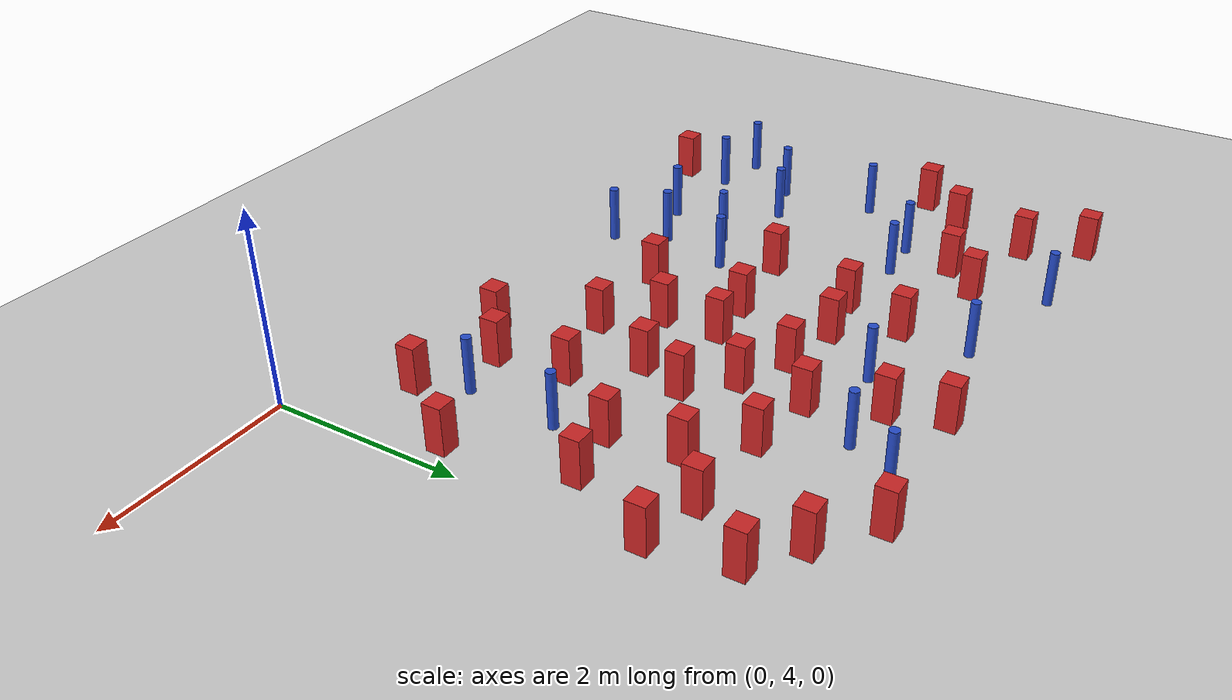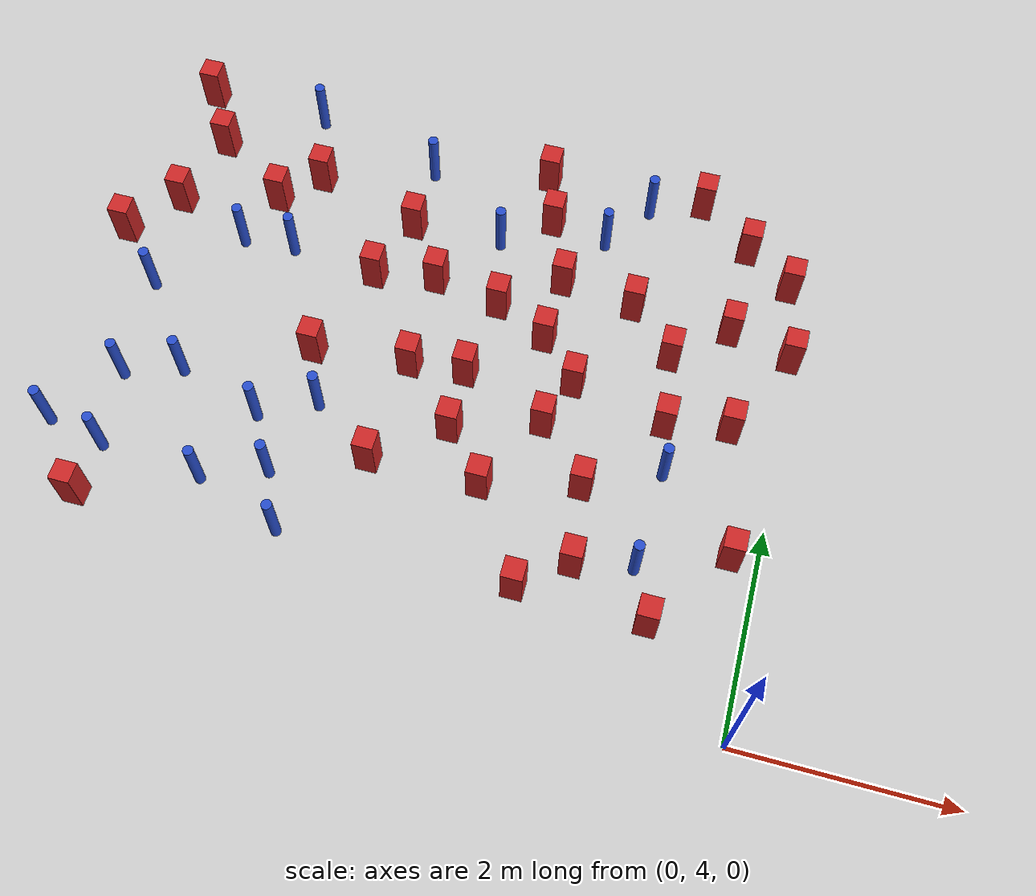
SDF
<sdf version="1.6">
 <world name="default">
  <model name="ground_plane">
   <static>1</static>
   <link name="link">
    <collision name="collision">
     <geometry><plane><normal>0 0 1</normal><size>100 100</size></plane></geometry>
     <surface><friction><ode><mu>100</mu><mu2>50</mu2></ode></friction></surface>
    </collision>
    <visual name="visual">
     <cast_shadows>0</cast_shadows>
     <geometry><plane><normal>0 0 1</normal><size>100 100</size></plane></geometry>
     <material>
      <ambient>1.0 1.0 1.0 1.0</ambient>
      <diffuse>0.8 0.8 0.8 1.0</diffuse>
      <specular>0.01 0.01 0.01 1.000000</specular>
     </material>
    </visual>
   </link>
  </model>
  <model name="square_post_obstacle0">
   <static>true</static>
   <pose>-6.55129325416 9.47398239666 -6.11067671241e-07 -5.50515727128e-06 -8.79689657224e-07 2.37013304536e-05</pose>
   <link name="link">
    <pose>0 0 0.25 0 -0 0</pose>
    <inertial>
     <mass>100</mass>
     <inertia>
      <ixx>0.166667</ixx>
      <ixy>0</ixy>
      <ixz>0</ixz>
      <iyy>0.166667</iyy>
      <iyz>0</iyz>
      <izz>0.166667</izz>
     </inertia>
    </inertial>
    <collision name="collision"><geometry><box><size>.2 .2 .5</size></box></geometry></collision>
    <visual name="visual">
     <geometry><box><size>.2 .2 .5</size></box></geometry>
     <material>
      <script><name>Gazebo/Red</name><uri>file://media/materials/scripts/gazebo.material</uri></script>
     </material>
    </visual>
   </link>
  </model>
  <model name="pole_obstacle3">
   <static>true</static>
   <pose>-2.09019270715 8.67762348994 -9.4761961606e-06 5.49618799729e-07 2.36310414e-07 -1.55090534824e-07</pose>
   <link name="link">
    <pose>0 0 0.3 0 -0 0</pose>
    <inertial>
     <mass>1</mass>
     <inertia><ixx>0.145833</ixx><ixy>0</ixy><ixz>0</ixz><iyy>0.145833</iyy><iyz>0</iyz><izz>0.125</izz></inertia>
    </inertial>
    <collision name="collision">
     <geometry><cylinder><radius>0.05</radius><length>.6</length></cylinder></geometry>
    </collision>
    <visual name="visual">
     <geometry><cylinder><radius>0.05</radius><length>.6</length></cylinder></geometry>
     <material>
      <script><name>Gazebo/Blue</name><uri>file://media/materials/scripts/gazebo.material</uri></script>
     </material>
    </visual>
   </link>
  </model>
  <model name="square_post_obstacle6">
   <static>true</static>
   <pose>-6.38697773006 8.07653702555 -6.11067671241e-07 -5.50515727128e-06 -8.79689657224e-07 2.37013304536e-05</pose>
   <link name="link">
    <pose>0 0 0.25 0 -0 0</pose>
    <inertial>
     <mass>100</mass>
     <inertia>
      <ixx>0.166667</ixx>
      <ixy>0</ixy>
      <ixz>0</ixz>
      <iyy>0.166667</iyy>
      <iyz>0</iyz>
      <izz>0.166667</izz>
     </inertia>
    </inertial>
    <collision name="collision"><geometry><box><size>.2 .2 .5</size></box></geometry></collision>
    <visual name="visual">
     <geometry><box><size>.2 .2 .5</size></box></geometry>
     <material>
      <script><name>Gazebo/Red</name><uri>file://media/materials/scripts/gazebo.material</uri></script>
     </material>
    </visual>
   </link>
  </model>
  <model name="pole_obstacle4">
   <static>true</static>
   <pose>-1.06302491297 5.34108228484 -9.47619616065e-06 5.49618799737e-07 2.36310414061e-07 -1.550905348e-07</pose>
   <link name="link">
    <pose>0 0 0.3 0 -0 0</pose>
    <inertial>
     <mass>1</mass>
     <inertia><ixx>0.145833</ixx><ixy>0</ixy><ixz>0</ixz><iyy>0.145833</iyy><iyz>0</iyz><izz>0.125</izz></inertia>
    </inertial>
    <collision name="collision">
     <geometry><cylinder><radius>0.05</radius><length>.6</length></cylinder></geometry>
    </collision>
    <visual name="visual">
     <geometry><cylinder><radius>0.05</radius><length>.6</length></cylinder></geometry>
     <material>
      <script><name>Gazebo/Blue</name><uri>file://media/materials/scripts/gazebo.material</uri></script>
     </material>
    </visual>
   </link>
  </model>
  <model name="pole_obstacle5">
   <static>true</static>
   <pose>-4.29775557987 6.17929323711 -9.47619616065e-06 5.49618799737e-07 2.36310414037e-07 -1.55090534814e-07</pose>
   <link name="link">
    <pose>0 0 0.3 0 -0 0</pose>
    <inertial>
     <mass>1</mass>
     <inertia><ixx>0.145833</ixx><ixy>0</ixy><ixz>0</ixz><iyy>0.145833</iyy><iyz>0</iyz><izz>0.125</izz></inertia>
    </inertial>
    <collision name="collision">
     <geometry><cylinder><radius>0.05</radius><length>.6</length></cylinder></geometry>
    </collision>
    <visual name="visual">
     <geometry><cylinder><radius>0.05</radius><length>.6</length></cylinder></geometry>
     <material>
      <script><name>Gazebo/Blue</name><uri>file://media/materials/scripts/gazebo.material</uri></script>
     </material>
    </visual>
   </link>
  </model>
  <model name="pole_obstacle7">
   <static>true</static>
   <pose>-5.32592031374 9.43319884852 -9.47619616065e-06 5.49618799737e-07 2.36310414065e-07 -1.55090534796e-07</pose>
   <link name="link">
    <pose>0 0 0.3 0 -0 0</pose>
    <inertial>
     <mass>1</mass>
     <inertia><ixx>0.145833</ixx><ixy>0</ixy><ixz>0</ixz><iyy>0.145833</iyy><iyz>0</iyz><izz>0.125</izz></inertia>
    </inertial>
    <collision name="collision">
     <geometry><cylinder><radius>0.05</radius><length>.6</length></cylinder></geometry>
    </collision>
    <visual name="visual">
     <geometry><cylinder><radius>0.05</radius><length>.6</length></cylinder></geometry>
     <material>
      <script><name>Gazebo/Blue</name><uri>file://media/materials/scripts/gazebo.material</uri></script>
     </material>
    </visual>
   </link>
  </model>
  <model name="square_post_obstacle17">
   <static>true</static>
   <pose>-6.20452500307 8.8755536267 -6.11067671241e-07 -5.50515727128e-06 -8.79689657224e-07 2.37013304536e-05</pose>
   <link name="link">
    <pose>0 0 0.25 0 -0 0</pose>
    <inertial>
     <mass>100</mass>
     <inertia>
      <ixx>0.166667</ixx>
      <ixy>0</ixy>
      <ixz>0</ixz>
      <iyy>0.166667</iyy>
      <iyz>0</iyz>
      <izz>0.166667</izz>
     </inertia>
    </inertial>
    <collision name="collision"><geometry><box><size>.2 .2 .5</size></box></geometry></collision>
    <visual name="visual">
     <geometry><box><size>.2 .2 .5</size></box></geometry>
     <material>
      <script><name>Gazebo/Red</name><uri>file://media/materials/scripts/gazebo.material</uri></script>
     </material>
    </visual>
   </link>
  </model>
  <model name="square_post_obstacle26">
   <static>true</static>
   <pose>-0.496489463464 6.91339312753 -6.11067671241e-07 -5.50515727128e-06 -8.79689657224e-07 2.37013304536e-05</pose>
   <link name="link">
    <pose>0 0 0.25 0 -0 0</pose>
    <inertial>
     <mass>100</mass>
     <inertia>
      <ixx>0.166667</ixx>
      <ixy>0</ixy>
      <ixz>0</ixz>
      <iyy>0.166667</iyy>
      <iyz>0</iyz>
      <izz>0.166667</izz>
     </inertia>
    </inertial>
    <collision name="collision"><geometry><box><size>.2 .2 .5</size></box></geometry></collision>
    <visual name="visual">
     <geometry><box><size>.2 .2 .5</size></box></geometry>
     <material>
      <script><name>Gazebo/Red</name><uri>file://media/materials/scripts/gazebo.material</uri></script>
     </material>
    </visual>
   </link>
  </model>
  <model name="square_post_obstacle27">
   <static>true</static>
   <pose>-3.66582739806 5.74987158202 -6.11067671241e-07 -5.50515727128e-06 -8.79689657224e-07 2.37013304536e-05</pose>
   <link name="link">
    <pose>0 0 0.25 0 -0 0</pose>
    <inertial>
     <mass>100</mass>
     <inertia>
      <ixx>0.166667</ixx>
      <ixy>0</ixy>
      <ixz>0</ixz>
      <iyy>0.166667</iyy>
      <iyz>0</iyz>
      <izz>0.166667</izz>
     </inertia>
    </inertial>
    <collision name="collision"><geometry><box><size>.2 .2 .5</size></box></geometry></collision>
    <visual name="visual">
     <geometry><box><size>.2 .2 .5</size></box></geometry>
     <material>
      <script><name>Gazebo/Red</name><uri>file://media/materials/scripts/gazebo.material</uri></script>
     </material>
    </visual>
   </link>
  </model>
  <model name="square_post_obstacle35">
   <static>true</static>
   <pose>-0.684515912544 8.93944924878 -6.11067671241e-07 -5.50515727128e-06 -8.79689657224e-07 2.37013304536e-05</pose>
   <link name="link">
    <pose>0 0 0.25 0 -0 0</pose>
    <inertial>
     <mass>100</mass>
     <inertia>
      <ixx>0.166667</ixx>
      <ixy>0</ixy>
      <ixz>0</ixz>
      <iyy>0.166667</iyy>
      <iyz>0</iyz>
      <izz>0.166667</izz>
     </inertia>
    </inertial>
    <collision name="collision"><geometry><box><size>.2 .2 .5</size></box></geometry></collision>
    <visual name="visual">
     <geometry><box><size>.2 .2 .5</size></box></geometry>
     <material>
      <script><name>Gazebo/Red</name><uri>file://media/materials/scripts/gazebo.material</uri></script>
     </material>
    </visual>
   </link>
  </model>
  <model name="square_post_obstacle43">
   <static>true</static>
   <pose>-2.02467837863 7.00538121798 -6.11067671241e-07 -5.50515727128e-06 -8.79689657224e-07 2.37013304536e-05</pose>
   <link name="link">
    <pose>0 0 0.25 0 -0 0</pose>
    <inertial>
     <mass>100</mass>
     <inertia>
      <ixx>0.166667</ixx>
      <ixy>0</ixy>
      <ixz>0</ixz>
      <iyy>0.166667</iyy>
      <iyz>0</iyz>
      <izz>0.166667</izz>
     </inertia>
    </inertial>
    <collision name="collision"><geometry><box><size>.2 .2 .5</size></box></geometry></collision>
    <visual name="visual">
     <geometry><box><size>.2 .2 .5</size></box></geometry>
     <material>
      <script><name>Gazebo/Red</name><uri>file://media/materials/scripts/gazebo.material</uri></script>
     </material>
    </visual>
   </link>
  </model>
  <model name="square_post_obstacle47">
   <static>true</static>
   <pose>-0.263417407403 5.66119914676 -6.11067671241e-07 -5.50515727128e-06 -8.79689657224e-07 2.37013304536e-05</pose>
   <link name="link">
    <pose>0 0 0.25 0 -0 0</pose>
    <inertial>
     <mass>100</mass>
     <inertia>
      <ixx>0.166667</ixx>
      <ixy>0</ixy>
      <ixz>0</ixz>
      <iyy>0.166667</iyy>
      <iyz>0</iyz>
      <izz>0.166667</izz>
     </inertia>
    </inertial>
    <collision name="collision"><geometry><box><size>.2 .2 .5</size></box></geometry></collision>
    <visual name="visual">
     <geometry><box><size>.2 .2 .5</size></box></geometry>
     <material>
      <script><name>Gazebo/Red</name><uri>file://media/materials/scripts/gazebo.material</uri></script>
     </material>
    </visual>
   </link>
  </model>
  <model name="square_post_obstacle51">
   <static>true</static>
   <pose>-4.00159535181 8.37356008593 -6.11067671241e-07 -5.50515727128e-06 -8.79689657224e-07 2.37013304536e-05</pose>
   <link name="link">
    <pose>0 0 0.25 0 -0 0</pose>
    <inertial>
     <mass>100</mass>
     <inertia>
      <ixx>0.166667</ixx>
      <ixy>0</ixy>
      <ixz>0</ixz>
      <iyy>0.166667</iyy>
      <iyz>0</iyz>
      <izz>0.166667</izz>
     </inertia>
    </inertial>
    <collision name="collision"><geometry><box><size>.2 .2 .5</size></box></geometry></collision>
    <visual name="visual">
     <geometry><box><size>.2 .2 .5</size></box></geometry>
     <material>
      <script><name>Gazebo/Red</name><uri>file://media/materials/scripts/gazebo.material</uri></script>
     </material>
    </visual>
   </link>
  </model>
  <model name="square_post_obstacle53">
   <static>true</static>
   <pose>-3.58585080911 6.81477076568 -6.11067671241e-07 -5.50515727128e-06 -8.79689657224e-07 2.37013304536e-05</pose>
   <link name="link">
    <pose>0 0 0.25 0 -0 0</pose>
    <inertial>
     <mass>100</mass>
     <inertia>
      <ixx>0.166667</ixx>
      <ixy>0</ixy>
      <ixz>0</ixz>
      <iyy>0.166667</iyy>
      <iyz>0</iyz>
      <izz>0.166667</izz>
     </inertia>
    </inertial>
    <collision name="collision"><geometry><box><size>.2 .2 .5</size></box></geometry></collision>
    <visual name="visual">
     <geometry><box><size>.2 .2 .5</size></box></geometry>
     <material>
      <script><name>Gazebo/Red</name><uri>file://media/materials/scripts/gazebo.material</uri></script>
     </material>
    </visual>
   </link>
  </model>
  <model name="square_post_obstacle54">
   <static>true</static>
   <pose>-2.60678214153 5.75771180035 -6.11067671241e-07 -5.50515727128e-06 -8.79689657224e-07 2.37013304536e-05</pose>
   <link name="link">
    <pose>0 0 0.25 0 -0 0</pose>
    <inertial>
     <mass>100</mass>
     <inertia>
      <ixx>0.166667</ixx>
      <ixy>0</ixy>
      <ixz>0</ixz>
      <iyy>0.166667</iyy>
      <iyz>0</iyz>
      <izz>0.166667</izz>
     </inertia>
    </inertial>
    <collision name="collision"><geometry><box><size>.2 .2 .5</size></box></geometry></collision>
    <visual name="visual">
     <geometry><box><size>.2 .2 .5</size></box></geometry>
     <material>
      <script><name>Gazebo/Red</name><uri>file://media/materials/scripts/gazebo.material</uri></script>
     </material>
    </visual>
   </link>
  </model>
  <model name="square_post_obstacle55">
   <static>true</static>
   <pose>-4.21501244533 7.70297389573 -6.11067671241e-07 -5.50515727128e-06 -8.79689657224e-07 2.37013304536e-05</pose>
   <link name="link">
    <pose>0 0 0.25 0 -0 0</pose>
    <inertial>
     <mass>100</mass>
     <inertia>
      <ixx>0.166667</ixx>
      <ixy>0</ixy>
      <ixz>0</ixz>
      <iyy>0.166667</iyy>
      <iyz>0</iyz>
      <izz>0.166667</izz>
     </inertia>
    </inertial>
    <collision name="collision"><geometry><box><size>.2 .2 .5</size></box></geometry></collision>
    <visual name="visual">
     <geometry><box><size>.2 .2 .5</size></box></geometry>
     <material>
      <script><name>Gazebo/Red</name><uri>file://media/materials/scripts/gazebo.material</uri></script>
     </material>
    </visual>
   </link>
  </model>
  <model name="square_post_obstacle57">
   <static>true</static>
   <pose>-2.05409325413 4.89397669716 -6.11067671241e-07 -5.50515727128e-06 -8.79689657224e-07 2.37013304536e-05</pose>
   <link name="link">
    <pose>0 0 0.25 0 -0 0</pose>
    <inertial>
     <mass>100</mass>
     <inertia>
      <ixx>0.166667</ixx>
      <ixy>0</ixy>
      <ixz>0</ixz>
      <iyy>0.166667</iyy>
      <iyz>0</iyz>
      <izz>0.166667</izz>
     </inertia>
    </inertial>
    <collision name="collision"><geometry><box><size>.2 .2 .5</size></box></geometry></collision>
    <visual name="visual">
     <geometry><box><size>.2 .2 .5</size></box></geometry>
     <material>
      <script><name>Gazebo/Red</name><uri>file://media/materials/scripts/gazebo.material</uri></script>
     </material>
    </visual>
   </link>
  </model>
  <model name="square_post_obstacle60">
   <static>true</static>
   <pose>-6.79474408376 7.58580745262 -6.11067671241e-07 -5.50515727128e-06 -8.79689657224e-07 2.37013304536e-05</pose>
   <link name="link">
    <pose>0 0 0.25 0 -0 0</pose>
    <inertial>
     <mass>100</mass>
     <inertia>
      <ixx>0.166667</ixx>
      <ixy>0</ixy>
      <ixz>0</ixz>
      <iyy>0.166667</iyy>
      <iyz>0</iyz>
      <izz>0.166667</izz>
     </inertia>
    </inertial>
    <collision name="collision"><geometry><box><size>.2 .2 .5</size></box></geometry></collision>
    <visual name="visual">
     <geometry><box><size>.2 .2 .5</size></box></geometry>
     <material>
      <script><name>Gazebo/Red</name><uri>file://media/materials/scripts/gazebo.material</uri></script>
     </material>
    </visual>
   </link>
  </model>
  <model name="pole_obstacle56">
   <static>true</static>
   <pose>-5.671925072 6.19955816013 -9.47619616065e-06 5.49618799737e-07 2.36310414037e-07 -1.55090534814e-07</pose>
   <link name="link">
    <pose>0 0 0.3 0 -0 0</pose>
    <inertial>
     <mass>1</mass>
     <inertia><ixx>0.145833</ixx><ixy>0</ixy><ixz>0</ixz><iyy>0.145833</iyy><iyz>0</iyz><izz>0.125</izz></inertia>
    </inertial>
    <collision name="collision">
     <geometry><cylinder><radius>0.05</radius><length>.6</length></cylinder></geometry>
    </collision>
    <visual name="visual">
     <geometry><cylinder><radius>0.05</radius><length>.6</length></cylinder></geometry>
     <material>
      <script><name>Gazebo/Blue</name><uri>file://media/materials/scripts/gazebo.material</uri></script>
     </material>
    </visual>
   </link>
  </model>
  <model name="square_post_obstacle62">
   <static>true</static>
   <pose>-1.09928156316 6.8022646117 -6.11067671241e-07 -5.50515727128e-06 -8.79689657224e-07 2.37013304536e-05</pose>
   <link name="link">
    <pose>0 0 0.25 0 -0 0</pose>
    <inertial>
     <mass>100</mass>
     <inertia>
      <ixx>0.166667</ixx>
      <ixy>0</ixy>
      <ixz>0</ixz>
      <iyy>0.166667</iyy>
      <iyz>0</iyz>
      <izz>0.166667</izz>
     </inertia>
    </inertial>
    <collision name="collision"><geometry><box><size>.2 .2 .5</size></box></geometry></collision>
    <visual name="visual">
     <geometry><box><size>.2 .2 .5</size></box></geometry>
     <material>
      <script><name>Gazebo/Red</name><uri>file://media/materials/scripts/gazebo.material</uri></script>
     </material>
    </visual>
   </link>
  </model>
  <model name="pole_obstacle64">
   <static>true</static>
   <pose>-6.2148788044 6.01932133459 -9.47619616065e-06 5.49618799737e-07 2.36310414037e-07 -1.55090534814e-07</pose>
   <link name="link">
    <pose>0 0 0.3 0 -0 0</pose>
    <inertial>
     <mass>1</mass>
     <inertia><ixx>0.145833</ixx><ixy>0</ixy><ixz>0</ixz><iyy>0.145833</iyy><iyz>0</iyz><izz>0.125</izz></inertia>
    </inertial>
    <collision name="collision">
     <geometry><cylinder><radius>0.05</radius><length>.6</length></cylinder></geometry>
    </collision>
    <visual name="visual">
     <geometry><cylinder><radius>0.05</radius><length>.6</length></cylinder></geometry>
     <material>
      <script><name>Gazebo/Blue</name><uri>file://media/materials/scripts/gazebo.material</uri></script>
     </material>
    </visual>
   </link>
  </model>
  <model name="pole_obstacle65">
   <static>true</static>
   <pose>-1.00467041186 6.31019117119 -9.47619616065e-06 5.49618799737e-07 2.36310414062e-07 -1.55090534799e-07</pose>
   <link name="link">
    <pose>0 0 0.3 0 -0 0</pose>
    <inertial>
     <mass>1</mass>
     <inertia><ixx>0.145833</ixx><ixy>0</ixy><ixz>0</ixz><iyy>0.145833</iyy><iyz>0</iyz><izz>0.125</izz></inertia>
    </inertial>
    <collision name="collision">
     <geometry><cylinder><radius>0.05</radius><length>.6</length></cylinder></geometry>
    </collision>
    <visual name="visual">
     <geometry><cylinder><radius>0.05</radius><length>.6</length></cylinder></geometry>
     <material>
      <script><name>Gazebo/Blue</name><uri>file://media/materials/scripts/gazebo.material</uri></script>
     </material>
    </visual>
   </link>
  </model>
  <model name="pole_obstacle83">
   <static>true</static>
   <pose>-4.52006581355 5.39533497449 -9.47619616065e-06 5.49618799737e-07 2.36310414037e-07 -1.55090534814e-07</pose>
   <link name="link">
    <pose>0 0 0.3 0 -0 0</pose>
    <inertial>
     <mass>1</mass>
     <inertia><ixx>0.145833</ixx><ixy>0</ixy><ixz>0</ixz><iyy>0.145833</iyy><iyz>0</iyz><izz>0.125</izz></inertia>
    </inertial>
    <collision name="collision">
     <geometry><cylinder><radius>0.05</radius><length>.6</length></cylinder></geometry>
    </collision>
    <visual name="visual">
     <geometry><cylinder><radius>0.05</radius><length>.6</length></cylinder></geometry>
     <material>
      <script><name>Gazebo/Blue</name><uri>file://media/materials/scripts/gazebo.material</uri></script>
     </material>
    </visual>
   </link>
  </model>
  <model name="pole_obstacle103">
   <static>true</static>
   <pose>-5.10421519804 7.80371111006 -9.47619616065e-06 5.49618799737e-07 2.36310414037e-07 -1.55090534814e-07</pose>
   <link name="link">
    <pose>0 0 0.3 0 -0 0</pose>
    <inertial>
     <mass>1</mass>
     <inertia><ixx>0.145833</ixx><ixy>0</ixy><ixz>0</ixz><iyy>0.145833</iyy><iyz>0</iyz><izz>0.125</izz></inertia>
    </inertial>
    <collision name="collision">
     <geometry><cylinder><radius>0.05</radius><length>.6</length></cylinder></geometry>
    </collision>
    <visual name="visual">
     <geometry><cylinder><radius>0.05</radius><length>.6</length></cylinder></geometry>
     <material>
      <script><name>Gazebo/Blue</name><uri>file://media/materials/scripts/gazebo.material</uri></script>
     </material>
    </visual>
   </link>
  </model>
  <model name="pole_obstacle105">
   <static>true</static>
   <pose>-5.1147221775 5.17281576397 -9.47619616065e-06 5.49618799737e-07 2.36310414037e-07 -1.55090534814e-07</pose>
   <link name="link">
    <pose>0 0 0.3 0 -0 0</pose>
    <inertial>
     <mass>1</mass>
     <inertia><ixx>0.145833</ixx><ixy>0</ixy><ixz>0</ixz><iyy>0.145833</iyy><iyz>0</iyz><izz>0.125</izz></inertia>
    </inertial>
    <collision name="collision">
     <geometry><cylinder><radius>0.05</radius><length>.6</length></cylinder></geometry>
    </collision>
    <visual name="visual">
     <geometry><cylinder><radius>0.05</radius><length>.6</length></cylinder></geometry>
     <material>
      <script><name>Gazebo/Blue</name><uri>file://media/materials/scripts/gazebo.material</uri></script>
     </material>
    </visual>
   </link>
  </model>
  <model name="pole_obstacle108">
   <static>true</static>
   <pose>-6.11376833803 5.25413184176 -9.47619616065e-06 5.49618799737e-07 2.36310414037e-07 -1.55090534814e-07</pose>
   <link name="link">
    <pose>0 0 0.3 0 -0 0</pose>
    <inertial>
     <mass>1</mass>
     <inertia><ixx>0.145833</ixx><ixy>0</ixy><ixz>0</ixz><iyy>0.145833</iyy><iyz>0</iyz><izz>0.125</izz></inertia>
    </inertial>
    <collision name="collision">
     <geometry><cylinder><radius>0.05</radius><length>.6</length></cylinder></geometry>
    </collision>
    <visual name="visual">
     <geometry><cylinder><radius>0.05</radius><length>.6</length></cylinder></geometry>
     <material>
      <script><name>Gazebo/Blue</name><uri>file://media/materials/scripts/gazebo.material</uri></script>
     </material>
    </visual>
   </link>
  </model>
  <model name="pole_obstacle115">
   <static>true</static>
   <pose>-6.69028254574 5.37780711455 -9.47619616065e-06 5.49618799737e-07 2.36310414037e-07 -1.55090534814e-07</pose>
   <link name="link">
    <pose>0 0 0.3 0 -0 0</pose>
    <inertial>
     <mass>1</mass>
     <inertia><ixx>0.145833</ixx><ixy>0</ixy><ixz>0</ixz><iyy>0.145833</iyy><iyz>0</iyz><izz>0.125</izz></inertia>
    </inertial>
    <collision name="collision">
     <geometry><cylinder><radius>0.05</radius><length>.6</length></cylinder></geometry>
    </collision>
    <visual name="visual">
     <geometry><cylinder><radius>0.05</radius><length>.6</length></cylinder></geometry>
     <material>
      <script><name>Gazebo/Blue</name><uri>file://media/materials/scripts/gazebo.material</uri></script>
     </material>
    </visual>
   </link>
  </model>
  <model name="square_post_obstacle107">
   <static>true</static>
   <pose>-3.60583528119 7.79904239397 -6.11067671241e-07 -5.50515727128e-06 -8.79689657224e-07 2.37013304536e-05</pose>
   <link name="link">
    <pose>0 0 0.25 0 -0 0</pose>
    <inertial>
     <mass>100</mass>
     <inertia>
      <ixx>0.166667</ixx>
      <ixy>0</ixy>
      <ixz>0</ixz>
      <iyy>0.166667</iyy>
      <iyz>0</iyz>
      <izz>0.166667</izz>
     </inertia>
    </inertial>
    <collision name="collision"><geometry><box><size>.2 .2 .5</size></box></geometry></collision>
    <visual name="visual">
     <geometry><box><size>.2 .2 .5</size></box></geometry>
     <material>
      <script><name>Gazebo/Red</name><uri>file://media/materials/scripts/gazebo.material</uri></script>
     </material>
    </visual>
   </link>
  </model>
  <model name="square_post_obstacle109">
   <static>true</static>
   <pose>-4.52531974265 6.72647748842 -6.11067671241e-07 -5.50515727128e-06 -8.79689657224e-07 2.37013304536e-05</pose>
   <link name="link">
    <pose>0 0 0.25 0 -0 0</pose>
    <inertial>
     <mass>100</mass>
     <inertia>
      <ixx>0.166667</ixx>
      <ixy>0</ixy>
      <ixz>0</ixz>
      <iyy>0.166667</iyy>
      <iyz>0</iyz>
      <izz>0.166667</izz>
     </inertia>
    </inertial>
    <collision name="collision"><geometry><box><size>.2 .2 .5</size></box></geometry></collision>
    <visual name="visual">
     <geometry><box><size>.2 .2 .5</size></box></geometry>
     <material>
      <script><name>Gazebo/Red</name><uri>file://media/materials/scripts/gazebo.material</uri></script>
     </material>
    </visual>
   </link>
  </model>
  <model name="pole_obstacle124">
   <static>true</static>
   <pose>-4.26615831273 4.86259187739 -9.47619616065e-06 5.49618799737e-07 2.36310414037e-07 -1.55090534814e-07</pose>
   <link name="link">
    <pose>0 0 0.3 0 -0 0</pose>
    <inertial>
     <mass>1</mass>
     <inertia><ixx>0.145833</ixx><ixy>0</ixy><ixz>0</ixz><iyy>0.145833</iyy><iyz>0</iyz><izz>0.125</izz></inertia>
    </inertial>
    <collision name="collision">
     <geometry><cylinder><radius>0.05</radius><length>.6</length></cylinder></geometry>
    </collision>
    <visual name="visual">
     <geometry><cylinder><radius>0.05</radius><length>.6</length></cylinder></geometry>
     <material>
      <script><name>Gazebo/Blue</name><uri>file://media/materials/scripts/gazebo.material</uri></script>
     </material>
    </visual>
   </link>
  </model>
  <model name="square_post_obstacle116">
   <static>true</static>
   <pose>-0.0770872219519 7.80448817523 -6.11067671241e-07 -5.50515727128e-06 -8.79689657224e-07 2.37013304536e-05</pose>
   <link name="link">
    <pose>0 0 0.25 0 -0 0</pose>
    <inertial>
     <mass>100</mass>
     <inertia>
      <ixx>0.166667</ixx>
      <ixy>0</ixy>
      <ixz>0</ixz>
      <iyy>0.166667</iyy>
      <iyz>0</iyz>
      <izz>0.166667</izz>
     </inertia>
    </inertial>
    <collision name="collision"><geometry><box><size>.2 .2 .5</size></box></geometry></collision>
    <visual name="visual">
     <geometry><box><size>.2 .2 .5</size></box></geometry>
     <material>
      <script><name>Gazebo/Red</name><uri>file://media/materials/scripts/gazebo.material</uri></script>
     </material>
    </visual>
   </link>
  </model>
  <model name="square_post_obstacle123">
   <static>true</static>
   <pose>-1.22337216501 9.37696071251 -6.11067671241e-07 -5.50515727128e-06 -8.79689657224e-07 2.37013304536e-05</pose>
   <link name="link">
    <pose>0 0 0.25 0 -0 0</pose>
    <inertial>
     <mass>100</mass>
     <inertia>
      <ixx>0.166667</ixx>
      <ixy>0</ixy>
      <ixz>0</ixz>
      <iyy>0.166667</iyy>
      <iyz>0</iyz>
      <izz>0.166667</izz>
     </inertia>
    </inertial>
    <collision name="collision"><geometry><box><size>.2 .2 .5</size></box></geometry></collision>
    <visual name="visual">
     <geometry><box><size>.2 .2 .5</size></box></geometry>
     <material>
      <script><name>Gazebo/Red</name><uri>file://media/materials/scripts/gazebo.material</uri></script>
     </material>
    </visual>
   </link>
  </model>
  <model name="square_post_obstacle131">
   <static>true</static>
   <pose>-1.70057144606 5.98459067102 -6.11067671241e-07 -5.50515727128e-06 -8.79689657224e-07 2.37013304536e-05</pose>
   <link name="link">
    <pose>0 0 0.25 0 -0 0</pose>
    <inertial>
     <mass>100</mass>
     <inertia>
      <ixx>0.166667</ixx>
      <ixy>0</ixy>
      <ixz>0</ixz>
      <iyy>0.166667</iyy>
      <iyz>0</iyz>
      <izz>0.166667</izz>
     </inertia>
    </inertial>
    <collision name="collision"><geometry><box><size>.2 .2 .5</size></box></geometry></collision>
    <visual name="visual">
     <geometry><box><size>.2 .2 .5</size></box></geometry>
     <material>
      <script><name>Gazebo/Red</name><uri>file://media/materials/scripts/gazebo.material</uri></script>
     </material>
    </visual>
   </link>
  </model>
  <model name="square_post_obstacle134">
   <static>true</static>
   <pose>-1.6116182466 5.23301421136 -6.11067671241e-07 -5.50515727128e-06 -8.79689657224e-07 2.37013304536e-05</pose>
   <link name="link">
    <pose>0 0 0.25 0 -0 0</pose>
    <inertial>
     <mass>100</mass>
     <inertia>
      <ixx>0.166667</ixx>
      <ixy>0</ixy>
      <ixz>0</ixz>
      <iyy>0.166667</iyy>
      <iyz>0</iyz>
      <izz>0.166667</izz>
     </inertia>
    </inertial>
    <collision name="collision"><geometry><box><size>.2 .2 .5</size></box></geometry></collision>
    <visual name="visual">
     <geometry><box><size>.2 .2 .5</size></box></geometry>
     <material>
      <script><name>Gazebo/Red</name><uri>file://media/materials/scripts/gazebo.material</uri></script>
     </material>
    </visual>
   </link>
  </model>
  <model name="pole_obstacle147">
   <static>true</static>
   <pose>-3.99861562362 9.07608058275 -9.47619616065e-06 5.49618799737e-07 2.36310414061e-07 -1.55090534799e-07</pose>
   <link name="link">
    <pose>0 0 0.3 0 -0 0</pose>
    <inertial>
     <mass>1</mass>
     <inertia><ixx>0.145833</ixx><ixy>0</ixy><ixz>0</ixz><iyy>0.145833</iyy><iyz>0</iyz><izz>0.125</izz></inertia>
    </inertial>
    <collision name="collision">
     <geometry><cylinder><radius>0.05</radius><length>.6</length></cylinder></geometry>
    </collision>
    <visual name="visual">
     <geometry><cylinder><radius>0.05</radius><length>.6</length></cylinder></geometry>
     <material>
      <script><name>Gazebo/Blue</name><uri>file://media/materials/scripts/gazebo.material</uri></script>
     </material>
    </visual>
   </link>
  </model>
  <model name="square_post_obstacle142">
   <static>true</static>
   <pose>-0.215906217523 8.59913766349 -6.11067671241e-07 -5.50515727128e-06 -8.79689657224e-07 2.37013304536e-05</pose>
   <link name="link">
    <pose>0 0 0.25 0 -0 0</pose>
    <inertial>
     <mass>100</mass>
     <inertia>
      <ixx>0.166667</ixx>
      <ixy>0</ixy>
      <ixz>0</ixz>
      <iyy>0.166667</iyy>
      <iyz>0</iyz>
      <izz>0.166667</izz>
     </inertia>
    </inertial>
    <collision name="collision"><geometry><box><size>.2 .2 .5</size></box></geometry></collision>
    <visual name="visual">
     <geometry><box><size>.2 .2 .5</size></box></geometry>
     <material>
      <script><name>Gazebo/Red</name><uri>file://media/materials/scripts/gazebo.material</uri></script>
     </material>
    </visual>
   </link>
  </model>
  <model name="square_post_obstacle144">
   <static>true</static>
   <pose>-0.688968982096 7.95656028667 -6.11067671241e-07 -5.50515727128e-06 -8.79689657224e-07 2.37013304536e-05</pose>
   <link name="link">
    <pose>0 0 0.25 0 -0 0</pose>
    <inertial>
     <mass>100</mass>
     <inertia>
      <ixx>0.166667</ixx>
      <ixy>0</ixy>
      <ixz>0</ixz>
      <iyy>0.166667</iyy>
      <iyz>0</iyz>
      <izz>0.166667</izz>
     </inertia>
    </inertial>
    <collision name="collision"><geometry><box><size>.2 .2 .5</size></box></geometry></collision>
    <visual name="visual">
     <geometry><box><size>.2 .2 .5</size></box></geometry>
     <material>
      <script><name>Gazebo/Red</name><uri>file://media/materials/scripts/gazebo.material</uri></script>
     </material>
    </visual>
   </link>
  </model>
  <model name="pole_obstacle156">
   <static>true</static>
   <pose>-5.62390000465 7.77313836488 -9.47619616065e-06 5.49618799737e-07 2.36310414037e-07 -1.55090534814e-07</pose>
   <link name="link">
    <pose>0 0 0.3 0 -0 0</pose>
    <inertial>
     <mass>1</mass>
     <inertia><ixx>0.145833</ixx><ixy>0</ixy><ixz>0</ixz><iyy>0.145833</iyy><iyz>0</iyz><izz>0.125</izz></inertia>
    </inertial>
    <collision name="collision">
     <geometry><cylinder><radius>0.05</radius><length>.6</length></cylinder></geometry>
    </collision>
    <visual name="visual">
     <geometry><cylinder><radius>0.05</radius><length>.6</length></cylinder></geometry>
     <material>
      <script><name>Gazebo/Blue</name><uri>file://media/materials/scripts/gazebo.material</uri></script>
     </material>
    </visual>
   </link>
  </model>
  <model name="square_post_obstacle147">
   <static>true</static>
   <pose>-1.19533878479 7.52768416803 -6.11067671241e-07 -5.50515727128e-06 -8.79689657224e-07 2.37013304536e-05</pose>
   <link name="link">
    <pose>0 0 0.25 0 -0 0</pose>
    <inertial>
     <mass>100</mass>
     <inertia>
      <ixx>0.166667</ixx>
      <ixy>0</ixy>
      <ixz>0</ixz>
      <iyy>0.166667</iyy>
      <iyz>0</iyz>
      <izz>0.166667</izz>
     </inertia>
    </inertial>
    <collision name="collision"><geometry><box><size>.2 .2 .5</size></box></geometry></collision>
    <visual name="visual">
     <geometry><box><size>.2 .2 .5</size></box></geometry>
     <material>
      <script><name>Gazebo/Red</name><uri>file://media/materials/scripts/gazebo.material</uri></script>
     </material>
    </visual>
   </link>
  </model>
  <model name="pole_obstacle161">
   <static>true</static>
   <pose>-1.73860436993 9.18267880892 -9.47619616065e-06 5.49618799737e-07 2.36310414046e-07 -1.55090534809e-07</pose>
   <link name="link">
    <pose>0 0 0.3 0 -0 0</pose>
    <inertial>
     <mass>1</mass>
     <inertia><ixx>0.145833</ixx><ixy>0</ixy><ixz>0</ixz><iyy>0.145833</iyy><iyz>0</iyz><izz>0.125</izz></inertia>
    </inertial>
    <collision name="collision">
     <geometry><cylinder><radius>0.05</radius><length>.6</length></cylinder></geometry>
    </collision>
    <visual name="visual">
     <geometry><cylinder><radius>0.05</radius><length>.6</length></cylinder></geometry>
     <material>
      <script><name>Gazebo/Blue</name><uri>file://media/materials/scripts/gazebo.material</uri></script>
     </material>
    </visual>
   </link>
  </model>
  <model name="pole_obstacle162">
   <static>true</static>
   <pose>-4.82654087166 5.92511164674 -9.47619616065e-06 5.49618799737e-07 2.36310414037e-07 -1.55090534814e-07</pose>
   <link name="link">
    <pose>0 0 0.3 0 -0 0</pose>
    <inertial>
     <mass>1</mass>
     <inertia><ixx>0.145833</ixx><ixy>0</ixy><ixz>0</ixz><iyy>0.145833</iyy><iyz>0</iyz><izz>0.125</izz></inertia>
    </inertial>
    <collision name="collision">
     <geometry><cylinder><radius>0.05</radius><length>.6</length></cylinder></geometry>
    </collision>
    <visual name="visual">
     <geometry><cylinder><radius>0.05</radius><length>.6</length></cylinder></geometry>
     <material>
      <script><name>Gazebo/Blue</name><uri>file://media/materials/scripts/gazebo.material</uri></script>
     </material>
    </visual>
   </link>
  </model>
  <model name="square_post_obstacle155">
   <static>true</static>
   <pose>-2.65066613907 8.77352898861 -6.11067671241e-07 -5.50515727128e-06 -8.79689657224e-07 2.37013304536e-05</pose>
   <link name="link">
    <pose>0 0 0.25 0 -0 0</pose>
    <inertial>
     <mass>100</mass>
     <inertia>
      <ixx>0.166667</ixx>
      <ixy>0</ixy>
      <ixz>0</ixz>
      <iyy>0.166667</iyy>
      <iyz>0</iyz>
      <izz>0.166667</izz>
     </inertia>
    </inertial>
    <collision name="collision"><geometry><box><size>.2 .2 .5</size></box></geometry></collision>
    <visual name="visual">
     <geometry><box><size>.2 .2 .5</size></box></geometry>
     <material>
      <script><name>Gazebo/Red</name><uri>file://media/materials/scripts/gazebo.material</uri></script>
     </material>
    </visual>
   </link>
  </model>
  <model name="square_post_obstacle157">
   <static>true</static>
   <pose>-6.15313601106 4.73606444792 -6.11067671241e-07 -5.50515727128e-06 -8.79689657224e-07 2.37013304536e-05</pose>
   <link name="link">
    <pose>0 0 0.25 0 -0 0</pose>
    <inertial>
     <mass>100</mass>
     <inertia>
      <ixx>0.166667</ixx>
      <ixy>0</ixy>
      <ixz>0</ixz>
      <iyy>0.166667</iyy>
      <iyz>0</iyz>
      <izz>0.166667</izz>
     </inertia>
    </inertial>
    <collision name="collision"><geometry><box><size>.2 .2 .5</size></box></geometry></collision>
    <visual name="visual">
     <geometry><box><size>.2 .2 .5</size></box></geometry>
     <material>
      <script><name>Gazebo/Red</name><uri>file://media/materials/scripts/gazebo.material</uri></script>
     </material>
    </visual>
   </link>
  </model>
  <model name="square_post_obstacle161">
   <static>true</static>
   <pose>-2.19970941499 6.52087197235 -6.11067671241e-07 -5.50515727128e-06 -8.79689657224e-07 2.37013304536e-05</pose>
   <link name="link">
    <pose>0 0 0.25 0 -0 0</pose>
    <inertial>
     <mass>100</mass>
     <inertia>
      <ixx>0.166667</ixx>
      <ixy>0</ixy>
      <ixz>0</ixz>
      <iyy>0.166667</iyy>
      <iyz>0</iyz>
      <izz>0.166667</izz>
     </inertia>
    </inertial>
    <collision name="collision"><geometry><box><size>.2 .2 .5</size></box></geometry></collision>
    <visual name="visual">
     <geometry><box><size>.2 .2 .5</size></box></geometry>
     <material>
      <script><name>Gazebo/Red</name><uri>file://media/materials/scripts/gazebo.material</uri></script>
     </material>
    </visual>
   </link>
  </model>
  <model name="square_post_obstacle162">
   <static>true</static>
   <pose>-2.93720938058 7.67304625435 -6.11067671241e-07 -5.50515727128e-06 -8.79689657224e-07 2.37013304536e-05</pose>
   <link name="link">
    <pose>0 0 0.25 0 -0 0</pose>
    <inertial>
     <mass>100</mass>
     <inertia>
      <ixx>0.166667</ixx>
      <ixy>0</ixy>
      <ixz>0</ixz>
      <iyy>0.166667</iyy>
      <iyz>0</iyz>
      <izz>0.166667</izz>
     </inertia>
    </inertial>
    <collision name="collision"><geometry><box><size>.2 .2 .5</size></box></geometry></collision>
    <visual name="visual">
     <geometry><box><size>.2 .2 .5</size></box></geometry>
     <material>
      <script><name>Gazebo/Red</name><uri>file://media/materials/scripts/gazebo.material</uri></script>
     </material>
    </visual>
   </link>
  </model>
  <model name="pole_obstacle174">
   <static>true</static>
   <pose>-3.11353467092 8.41084519706 -9.47619616065e-06 5.49618799738e-07 2.36310414059e-07 -1.55090534802e-07</pose>
   <link name="link">
    <pose>0 0 0.3 0 -0 0</pose>
    <inertial>
     <mass>1</mass>
     <inertia><ixx>0.145833</ixx><ixy>0</ixy><ixz>0</ixz><iyy>0.145833</iyy><iyz>0</iyz><izz>0.125</izz></inertia>
    </inertial>
    <collision name="collision">
     <geometry><cylinder><radius>0.05</radius><length>.6</length></cylinder></geometry>
    </collision>
    <visual name="visual">
     <geometry><cylinder><radius>0.05</radius><length>.6</length></cylinder></geometry>
     <material>
      <script><name>Gazebo/Blue</name><uri>file://media/materials/scripts/gazebo.material</uri></script>
     </material>
    </visual>
   </link>
  </model>
  <model name="pole_obstacle177">
   <static>true</static>
   <pose>-6.30743721631 7.05132537586 -9.47619616065e-06 5.49618799737e-07 2.36310414037e-07 -1.55090534814e-07</pose>
   <link name="link">
    <pose>0 0 0.3 0 -0 0</pose>
    <inertial>
     <mass>1</mass>
     <inertia><ixx>0.145833</ixx><ixy>0</ixy><ixz>0</ixz><iyy>0.145833</iyy><iyz>0</iyz><izz>0.125</izz></inertia>
    </inertial>
    <collision name="collision">
     <geometry><cylinder><radius>0.05</radius><length>.6</length></cylinder></geometry>
    </collision>
    <visual name="visual">
     <geometry><cylinder><radius>0.05</radius><length>.6</length></cylinder></geometry>
     <material>
      <script><name>Gazebo/Blue</name><uri>file://media/materials/scripts/gazebo.material</uri></script>
     </material>
    </visual>
   </link>
  </model>
  <model name="square_post_obstacle169">
   <static>true</static>
   <pose>-3.02555099101 6.24316231764 -6.11067671241e-07 -5.50515727128e-06 -8.79689657224e-07 2.37013304536e-05</pose>
   <link name="link">
    <pose>0 0 0.25 0 -0 0</pose>
    <inertial>
     <mass>100</mass>
     <inertia>
      <ixx>0.166667</ixx>
      <ixy>0</ixy>
      <ixz>0</ixz>
      <iyy>0.166667</iyy>
      <iyz>0</iyz>
      <izz>0.166667</izz>
     </inertia>
    </inertial>
    <collision name="collision"><geometry><box><size>.2 .2 .5</size></box></geometry></collision>
    <visual name="visual">
     <geometry><box><size>.2 .2 .5</size></box></geometry>
     <material>
      <script><name>Gazebo/Red</name><uri>file://media/materials/scripts/gazebo.material</uri></script>
     </material>
    </visual>
   </link>
  </model>
  <model name="square_post_obstacle177">
   <static>true</static>
   <pose>-3.04183450272 6.85458387072 -6.11067671241e-07 -5.50515727128e-06 -8.79689657224e-07 2.37013304536e-05</pose>
   <link name="link">
    <pose>0 0 0.25 0 -0 0</pose>
    <inertial>
     <mass>100</mass>
     <inertia>
      <ixx>0.166667</ixx>
      <ixy>0</ixy>
      <ixz>0</ixz>
      <iyy>0.166667</iyy>
      <iyz>0</iyz>
      <izz>0.166667</izz>
     </inertia>
    </inertial>
    <collision name="collision"><geometry><box><size>.2 .2 .5</size></box></geometry></collision>
    <visual name="visual">
     <geometry><box><size>.2 .2 .5</size></box></geometry>
     <material>
      <script><name>Gazebo/Red</name><uri>file://media/materials/scripts/gazebo.material</uri></script>
     </material>
    </visual>
   </link>
  </model>
  <model name="square_post_obstacle183">
   <static>true</static>
   <pose>-5.08021512094 8.70142660134 -6.11067671241e-07 -5.50515727128e-06 -8.79689657224e-07 2.37013304536e-05</pose>
   <link name="link">
    <pose>0 0 0.25 0 -0 0</pose>
    <inertial>
     <mass>100</mass>
     <inertia>
      <ixx>0.166667</ixx>
      <ixy>0</ixy>
      <ixz>0</ixz>
      <iyy>0.166667</iyy>
      <iyz>0</iyz>
      <izz>0.166667</izz>
     </inertia>
    </inertial>
    <collision name="collision"><geometry><box><size>.2 .2 .5</size></box></geometry></collision>
    <visual name="visual">
     <geometry><box><size>.2 .2 .5</size></box></geometry>
     <material>
      <script><name>Gazebo/Red</name><uri>file://media/materials/scripts/gazebo.material</uri></script>
     </material>
    </visual>
   </link>
  </model>
  <model name="square_post_obstacle197">
   <static>true</static>
   <pose>-2.81604483562 9.30511600449 -6.11067671241e-07 -5.50515727128e-06 -8.79689657224e-07 2.37013304536e-05</pose>
   <link name="link">
    <pose>0 0 0.25 0 -0 0</pose>
    <inertial>
     <mass>100</mass>
     <inertia>
      <ixx>0.166667</ixx>
      <ixy>0</ixy>
      <ixz>0</ixz>
      <iyy>0.166667</iyy>
      <iyz>0</iyz>
      <izz>0.166667</izz>
     </inertia>
    </inertial>
    <collision name="collision"><geometry><box><size>.2 .2 .5</size></box></geometry></collision>
    <visual name="visual">
     <geometry><box><size>.2 .2 .5</size></box></geometry>
     <material>
      <script><name>Gazebo/Red</name><uri>file://media/materials/scripts/gazebo.material</uri></script>
     </material>
    </visual>
   </link>
  </model>
  <model name="square_post_obstacle205">
   <static>true</static>
   <pose>-5.4357800498 8.34555997688 -6.11067671241e-07 -5.50515727128e-06 -8.79689657224e-07 2.37013304536e-05</pose>
   <link name="link">
    <pose>0 0 0.25 0 -0 0</pose>
    <inertial>
     <mass>100</mass>
     <inertia>
      <ixx>0.166667</ixx>
      <ixy>0</ixy>
      <ixz>0</ixz>
      <iyy>0.166667</iyy>
      <iyz>0</iyz>
      <izz>0.166667</izz>
     </inertia>
    </inertial>
    <collision name="collision"><geometry><box><size>.2 .2 .5</size></box></geometry></collision>
    <visual name="visual">
     <geometry><box><size>.2 .2 .5</size></box></geometry>
     <material>
      <script><name>Gazebo/Red</name><uri>file://media/materials/scripts/gazebo.material</uri></script>
     </material>
    </visual>
   </link>
  </model>
  <model name="square_post_obstacle207">
   <static>true</static>
   <pose>-2.3893100498 8.09747997688 -6.11067671241e-07 -5.50515727128e-06 -8.79689657224e-07 2.37013304536e-05</pose>
   <link name="link">
    <pose>0 0 0.25 0 -0 0</pose>
    <inertial>
     <mass>100</mass>
     <inertia>
      <ixx>0.166667</ixx>
      <ixy>0</ixy>
      <ixz>0</ixz>
      <iyy>0.166667</iyy>
      <iyz>0</iyz>
      <izz>0.166667</izz>
     </inertia>
    </inertial>
    <collision name="collision"><geometry><box><size>.2 .2 .5</size></box></geometry></collision>
    <visual name="visual">
     <geometry><box><size>.2 .2 .5</size></box></geometry>
     <material>
      <script><name>Gazebo/Red</name><uri>file://media/materials/scripts/gazebo.material</uri></script>
     </material>
    </visual>
   </link>
  </model>
  <model name="square_post_obstacle208">
   <static>true</static>
   <pose>-2.4102500498 7.41926997688 -6.11067671241e-07 -5.50515727128e-06 -8.79689657224e-07 2.37013304536e-05</pose>
   <link name="link">
    <pose>0 0 0.25 0 -0 0</pose>
    <inertial>
     <mass>100</mass>
     <inertia>
      <ixx>0.166667</ixx>
      <ixy>0</ixy>
      <ixz>0</ixz>
      <iyy>0.166667</iyy>
      <iyz>0</iyz>
      <izz>0.166667</izz>
     </inertia>
    </inertial>
    <collision name="collision"><geometry><box><size>.2 .2 .5</size></box></geometry></collision>
    <visual name="visual">
     <geometry><box><size>.2 .2 .5</size></box></geometry>
     <material>
      <script><name>Gazebo/Red</name><uri>file://media/materials/scripts/gazebo.material</uri></script>
     </material>
    </visual>
   </link>
  </model>
  <model name="square_post_obstacle215">
   <static>true</static>
   <pose>-0.854182049797 4.86595997688 -6.11067671241e-07 -5.50515727128e-06 -8.79689657224e-07 2.37013304536e-05</pose>
   <link name="link">
    <pose>0 0 0.25 0 -0 0</pose>
    <inertial>
     <mass>100</mass>
     <inertia>
      <ixx>0.166667</ixx>
      <ixy>0</ixy>
      <ixz>0</ixz>
      <iyy>0.166667</iyy>
      <iyz>0</iyz>
      <izz>0.166667</izz>
     </inertia>
    </inertial>
    <collision name="collision"><geometry><box><size>.2 .2 .5</size></box></geometry></collision>
    <visual name="visual">
     <geometry><box><size>.2 .2 .5</size></box></geometry>
     <material>
      <script><name>Gazebo/Red</name><uri>file://media/materials/scripts/gazebo.material</uri></script>
     </material>
    </visual>
   </link>
  </model>
  <model name="square_post_obstacle222">
   <static>true</static>
   <pose>-1.6575000498 7.99222997688 -6.11067671241e-07 -5.50515727128e-06 -8.79689657224e-07 2.37013304536e-05</pose>
   <link name="link">
    <pose>0 0 0.25 0 -0 0</pose>
    <inertial>
     <mass>100</mass>
     <inertia>
      <ixx>0.166667</ixx>
      <ixy>0</ixy>
      <ixz>0</ixz>
      <iyy>0.166667</iyy>
      <iyz>0</iyz>
      <izz>0.166667</izz>
     </inertia>
    </inertial>
    <collision name="collision"><geometry><box><size>.2 .2 .5</size></box></geometry></collision>
    <visual name="visual">
     <geometry><box><size>.2 .2 .5</size></box></geometry>
     <material>
      <script><name>Gazebo/Red</name><uri>file://media/materials/scripts/gazebo.material</uri></script>
     </material>
    </visual>
   </link>
  </model>
 </world>
</sdf>
